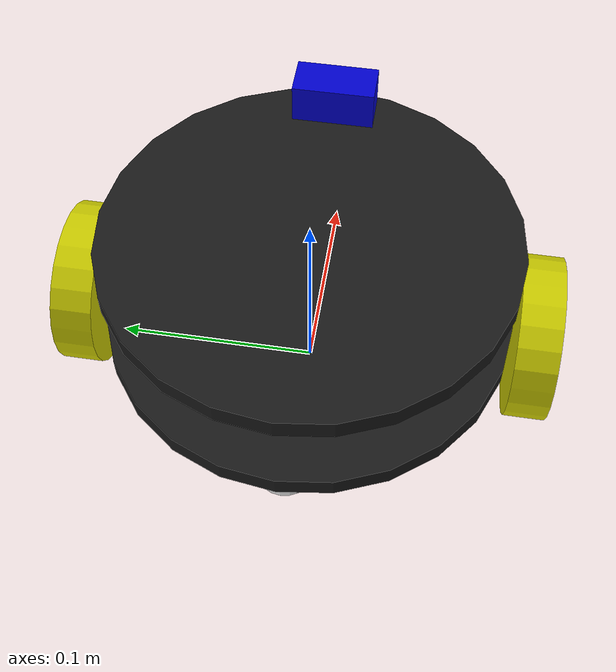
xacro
<?xml version="1.0"?>
<robot name="antbot" xmlns:xacro="http://ros.org/wiki/xacro">

  <!-- Constants -->
  <xacro:property name="base_radius" value="0.10" />
  <xacro:property name="base_height" value="0.01" />
  <xacro:property name="wheel_radius" value="0.04" />
  <xacro:property name="wheel_width" value="0.02" />
  <xacro:property name="wheel_separation" value="0.22" />
  <xacro:property name="caster_radius" value="0.015" />
  <xacro:property name="chassis_mass" value="1.0" />
  <xacro:property name="wheel_mass" value="0.1" />

  <!-- Material definitions -->
  <material name="black">
    <color rgba="0.1 0.1 0.1 1"/>
  </material>
  <material name="yellow">
    <color rgba="0.8 0.8 0.0 1"/>
  </material>
  <material name="blue">
    <color rgba="0.0 0.0 0.8 1"/>
  </material>
  <material name="white">
    <color rgba="0.9 0.9 0.9 1"/>
  </material>

  <link name="base_footprint" />

  <joint name="base_joint" type="fixed">
    <parent link="base_footprint"/>
    <child link="base_link"/>
    <origin xyz="0 0 ${wheel_radius}" rpy="0 0 0"/>
  </joint>

  <!-- Base Link (Lower Plate) -->
  <link name="base_link">
    <visual>
      <origin xyz="0 0 0" rpy="0 0 0" />
      <geometry>
        <cylinder radius="${base_radius}" length="${base_height}"/>
      </geometry>
      <material name="black"/>
    </visual>
    <collision>
      <origin xyz="0 0 0" rpy="0 0 0" />
      <geometry>
        <cylinder radius="${base_radius}" length="${base_height}"/>
      </geometry>
    </collision>
    <inertial>
      <origin xyz="0 0 0" rpy="0 0 0"/>
      <mass value="${chassis_mass}"/>
      <inertia ixx="${(1/12) * chassis_mass * (3 * base_radius * base_radius + base_height * base_height)}" ixy="0.0" ixz="0.0"
               iyy="${(1/12) * chassis_mass * (3 * base_radius * base_radius + base_height * base_height)}" iyz="0.0"
               izz="${(1/2) * chassis_mass * (base_radius * base_radius)}" />
    </inertial>
  </link>

  <!-- Top Plate -->
  <joint name="top_plate_joint" type="fixed">
    <parent link="base_link"/>
    <child link="top_plate"/>
    <origin xyz="0 0 0.05" rpy="0 0 0"/>
  </joint>

  <link name="top_plate">
    <visual>
      <origin xyz="0 0 0" rpy="0 0 0" />
      <geometry>
        <cylinder radius="${base_radius}" length="${base_height}"/>
      </geometry>
      <material name="black"/>
    </visual>
    <collision>
      <origin xyz="0 0 0" rpy="0 0 0" />
      <geometry>
        <cylinder radius="${base_radius}" length="${base_height}"/>
      </geometry>
    </collision>
    <inertial>
      <mass value="0.2"/>
      <inertia ixx="0.001" ixy="0" ixz="0" iyy="0.001" iyz="0" izz="0.001"/>
    </inertial>
  </link>

  <!-- Left Wheel -->
  <joint name="left_wheel_joint" type="continuous">
    <parent link="base_link"/>
    <child link="left_wheel"/>
    <origin xyz="0 ${wheel_separation / 2} 0" rpy="-${pi/2} 0 0"/>
    <axis xyz="0 0 1"/>
  </joint>

  <link name="left_wheel">
    <visual>
      <origin xyz="0 0 0" rpy="0 0 0" />
      <geometry>
        <cylinder radius="${wheel_radius}" length="${wheel_width}"/>
      </geometry>
      <material name="yellow"/>
    </visual>
    <collision>
      <origin xyz="0 0 0" rpy="0 0 0" />
      <geometry>
        <cylinder radius="${wheel_radius}" length="${wheel_width}"/>
      </geometry>
    </collision>
    <inertial>
      <mass value="${wheel_mass}"/>
      <inertia ixx="${(1/12) * wheel_mass * (3 * wheel_radius * wheel_radius + wheel_width * wheel_width)}" ixy="0" ixz="0"
               iyy="${(1/12) * wheel_mass * (3 * wheel_radius * wheel_radius + wheel_width * wheel_width)}" iyz="0"
               izz="${(1/2) * wheel_mass * (wheel_radius * wheel_radius)}"/>
    </inertial>
  </link>

  <!-- Right Wheel -->
  <joint name="right_wheel_joint" type="continuous">
    <parent link="base_link"/>
    <child link="right_wheel"/>
    <origin xyz="0 -${wheel_separation / 2} 0" rpy="-${pi/2} 0 0"/>
    <axis xyz="0 0 1"/>
  </joint>

  <link name="right_wheel">
    <visual>
      <origin xyz="0 0 0" rpy="0 0 0" />
      <geometry>
        <cylinder radius="${wheel_radius}" length="${wheel_width}"/>
      </geometry>
      <material name="yellow"/>
    </visual>
    <collision>
      <origin xyz="0 0 0" rpy="0 0 0" />
      <geometry>
        <cylinder radius="${wheel_radius}" length="${wheel_width}"/>
      </geometry>
    </collision>
    <inertial>
      <mass value="${wheel_mass}"/>
      <inertia ixx="${(1/12) * wheel_mass * (3 * wheel_radius * wheel_radius + wheel_width * wheel_width)}" ixy="0" ixz="0"
               iyy="${(1/12) * wheel_mass * (3 * wheel_radius * wheel_radius + wheel_width * wheel_width)}" iyz="0"
               izz="${(1/2) * wheel_mass * (wheel_radius * wheel_radius)}"/>
    </inertial>
  </link>

  <!-- Front Caster -->
  <joint name="front_caster_joint" type="fixed">
    <parent link="base_link"/>
    <child link="front_caster"/>
    <origin xyz="${base_radius - caster_radius - 0.01} 0 -${wheel_radius - caster_radius}" rpy="0 0 0"/>
  </joint>

  <link name="front_caster">
    <visual>
      <origin xyz="0 0 0" rpy="0 0 0" />
      <geometry>
        <sphere radius="${caster_radius}"/>
      </geometry>
      <material name="white"/>
    </visual>
    <collision>
      <origin xyz="0 0 0" rpy="0 0 0" />
      <geometry>
        <sphere radius="${caster_radius}"/>
      </geometry>
    </collision>
    <inertial>
      <mass value="0.05"/>
      <inertia ixx="0.0001" ixy="0" ixz="0" iyy="0.0001" iyz="0" izz="0.0001"/>
    </inertial>
  </link>

  <!-- Back Caster -->
  <joint name="back_caster_joint" type="fixed">
    <parent link="base_link"/>
    <child link="back_caster"/>
    <origin xyz="-${base_radius - caster_radius - 0.01} 0 -${wheel_radius - caster_radius}" rpy="0 0 0"/>
  </joint>

  <link name="back_caster">
    <visual>
      <origin xyz="0 0 0" rpy="0 0 0" />
      <geometry>
        <sphere radius="${caster_radius}"/>
      </geometry>
      <material name="white"/>
    </visual>
    <collision>
      <origin xyz="0 0 0" rpy="0 0 0" />
      <geometry>
        <sphere radius="${caster_radius}"/>
      </geometry>
    </collision>
    <inertial>
      <mass value="0.05"/>
      <inertia ixx="0.0001" ixy="0" ixz="0" iyy="0.0001" iyz="0" izz="0.0001"/>
    </inertial>
  </link>

  <!-- Camera -->
  <joint name="camera_joint" type="fixed">
    <parent link="top_plate"/>
    <child link="camera_link"/>
    <origin xyz="${base_radius - 0.02} 0 0.02" rpy="0 0 0"/>
  </joint>

  <link name="camera_link">
    <visual>
      <origin xyz="0 0 0" rpy="0 0 0"/>
      <geometry>
        <box size="0.02 0.04 0.02"/>
      </geometry>
      <material name="blue"/>
    </visual>
    <collision>
      <geometry>
        <box size="0.02 0.04 0.02"/>
      </geometry>
    </collision>
    <inertial>
      <mass value="0.01"/>
      <inertia ixx="0.00001" ixy="0" ixz="0" iyy="0.00001" iyz="0" izz="0.00001"/>
    </inertial>
  </link>

  <joint name="camera_optical_joint" type="fixed">
    <parent link="camera_link"/>
    <child link="camera_link_optical"/>
    <origin xyz="0 0 0" rpy="${-pi/2} 0 ${-pi/2}"/>
  </joint>
  <link name="camera_link_optical"></link>

  <!-- ── IR Sensor Link (simulates ESP32 IR proximity array) ─────────────── -->
  <!-- Mounted on the front of the lower chassis, pointing forward            -->
  <joint name="ir_sensor_joint" type="fixed">
    <parent link="base_link"/>
    <child link="ir_sensor_link"/>
    <origin xyz="${base_radius} 0 0.02" rpy="0 0 0"/>
  </joint>

  <link name="ir_sensor_link">
    <visual>
      <origin xyz="0 0 0" rpy="0 0 0"/>
      <geometry>
        <box size="0.01 0.06 0.01"/>
      </geometry>
      <material name="blue"/>
    </visual>
    <inertial>
      <mass value="0.001"/>
      <inertia ixx="0.000001" ixy="0" ixz="0" iyy="0.000001" iyz="0" izz="0.000001"/>
    </inertial>
  </link>

  <!-- Gazebo plugins -->
  <gazebo reference="base_link">
    <material>Gazebo/Black</material>
  </gazebo>
  <gazebo reference="top_plate">
    <material>Gazebo/Black</material>
  </gazebo>
  <gazebo reference="left_wheel">
    <material>Gazebo/Yellow</material>
  </gazebo>
  <gazebo reference="right_wheel">
    <material>Gazebo/Yellow</material>
  </gazebo>
  <gazebo reference="front_caster">
    <material>Gazebo/White</material>
    <mu1>0.001</mu1>
    <mu2>0.001</mu2>
  </gazebo>
  <gazebo reference="back_caster">
    <material>Gazebo/White</material>
    <mu1>0.001</mu1>
    <mu2>0.001</mu2>
  </gazebo>
  <gazebo reference="camera_link">
    <material>Gazebo/Blue</material>
  </gazebo>

  <gazebo>
    <plugin name="diff_drive" filename="libgazebo_ros_diff_drive.so">
      <ros>
        <!-- namespace will be passed by spawner -->
      </ros>
      <left_joint>left_wheel_joint</left_joint>
      <right_joint>right_wheel_joint</right_joint>
      <wheel_separation>${wheel_separation}</wheel_separation>
      <wheel_diameter>${wheel_radius * 2}</wheel_diameter>
      <max_wheel_torque>20</max_wheel_torque>
      <max_wheel_acceleration>1.0</max_wheel_acceleration>
      <command_topic>cmd_vel</command_topic>
      <publish_odom>true</publish_odom>
      <publish_odom_tf>true</publish_odom_tf>
      <publish_wheel_tf>false</publish_wheel_tf>
      <odometry_topic>odom</odometry_topic>
      <odometry_frame>odom</odometry_frame>
      <robot_base_frame>base_footprint</robot_base_frame>
    </plugin>
  </gazebo>

  <gazebo reference="camera_link">
    <sensor type="camera" name="camera">
      <update_rate>10.0</update_rate>
      <camera name="head">
        <horizontal_fov>1.3962634</horizontal_fov>
        <image>
          <width>640</width>
          <height>480</height>
          <format>R8G8B8</format>
        </image>
        <clip>
          <near>0.02</near>
          <far>10.0</far>
        </clip>
        <noise>
          <type>gaussian</type>
          <mean>0.0</mean>
          <stddev>0.007</stddev>
        </noise>
      </camera>
      <plugin name="camera_controller" filename="libgazebo_ros_camera.so">
        <alwaysOn>true</alwaysOn>
        <updateRate>10.0</updateRate>
        <cameraName>camera</cameraName>
        <imageTopicName>image_raw</imageTopicName>
        <cameraInfoTopicName>camera_info</cameraInfoTopicName>
        <frameName>camera_link_optical</frameName>
      </plugin>
    </sensor>
  </gazebo>

  <!-- ESP32 IR proximity sensors: 3-beam laser scan (front-left, front, front-right) -->
  <gazebo reference="ir_sensor_link">
    <sensor type="ray" name="ir_sensors">
      <pose>0 0 0 0 0 0</pose>
      <visualize>false</visualize>
      <update_rate>10</update_rate>
      <ray>
        <scan>
          <horizontal>
            <samples>61</samples>
            <resolution>1</resolution>
            <min_angle>-0.5236</min_angle>
            <max_angle>0.5236</max_angle>
          </horizontal>
        </scan>
        <range>
          <min>0.02</min>
          <max>0.5</max>
          <resolution>0.01</resolution>
        </range>
        <noise>
          <type>gaussian</type>
          <mean>0.0</mean>
          <stddev>0.01</stddev>
        </noise>
      </ray>
      <plugin name="ir_sensor_plugin" filename="libgazebo_ros_ray_sensor.so">
        <ros>
          <remapping>~/out:=scan</remapping>
        </ros>
        <output_type>sensor_msgs/LaserScan</output_type>
        <frame_name>ir_sensor_link</frame_name>
      </plugin>
    </sensor>
  </gazebo>

</robot>
